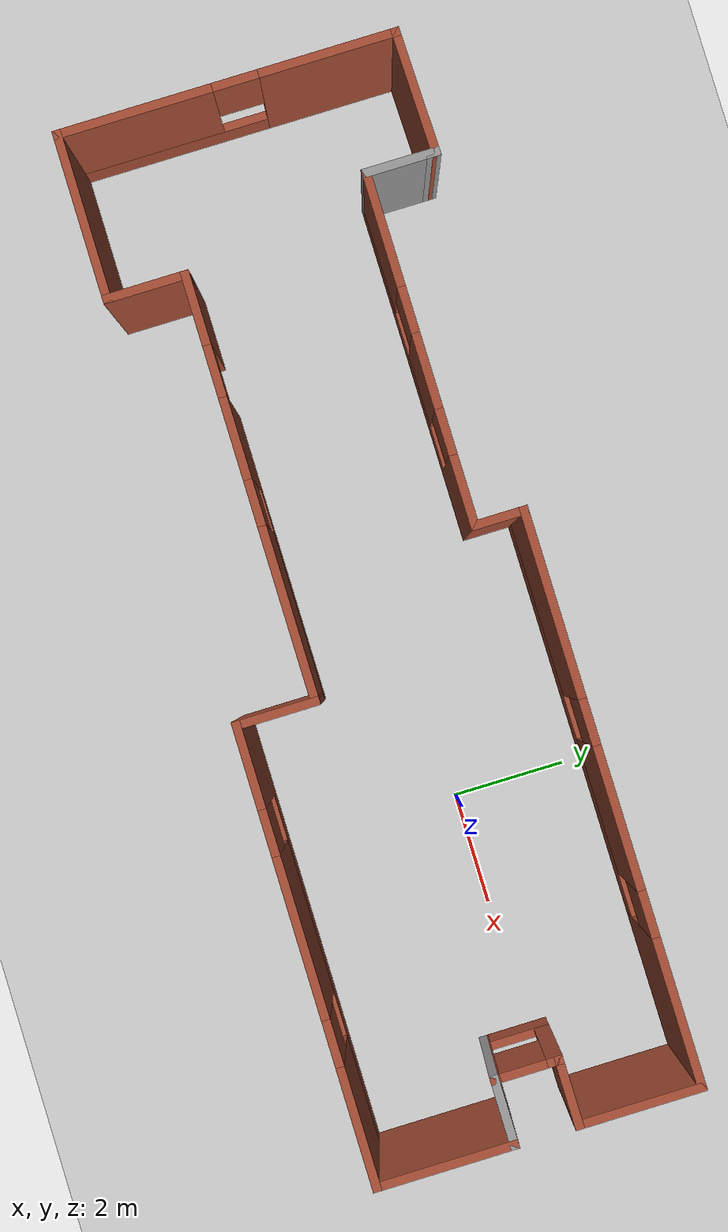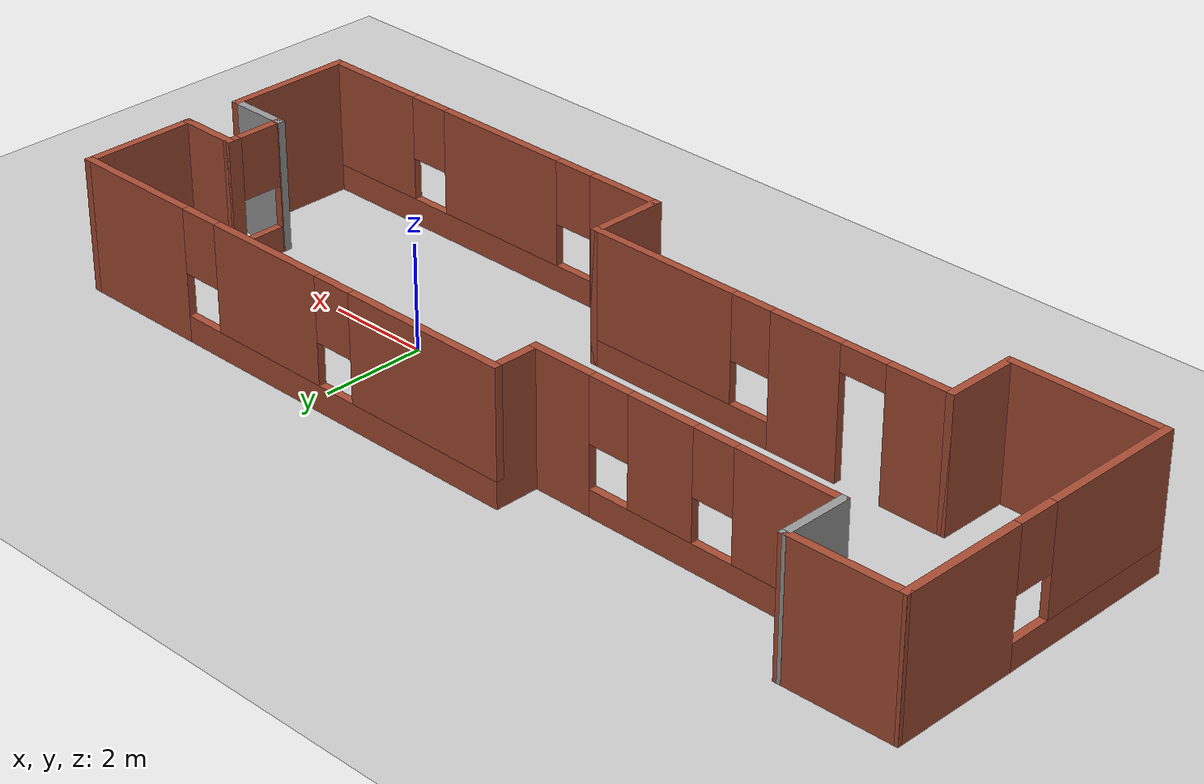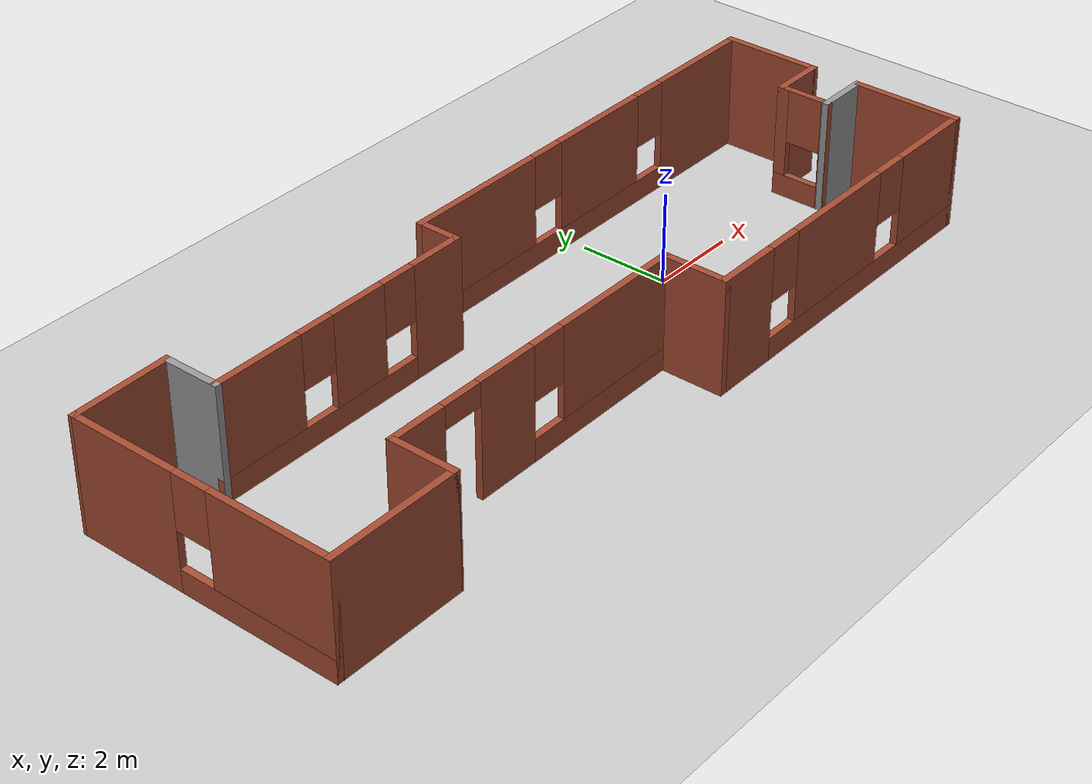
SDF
<sdf version="1.7">
 <world name="default">
  <light name="sun" type="directional">
   <pose>0 0 10 0 -0 0</pose>
   <diffuse>0.8 0.8 0.8 1</diffuse>
   <specular>0.2 0.2 0.2 1</specular>
   <attenuation>
    <range>1000</range>
    <constant>0.9</constant>
    <linear>0.01</linear>
    <quadratic>0.001</quadratic>
   </attenuation>
   <direction>-0.5 0.1 -0.9</direction>
   <spot><inner_angle>0</inner_angle><outer_angle>0</outer_angle><falloff>0</falloff></spot>
  </light>
  <model name="ground_plane">
   <static>1</static>
   <link name="link">
    <collision name="collision">
     <geometry><plane><normal>0 0 1</normal><size>100 100</size></plane></geometry>
     <surface>
      <contact><collide_bitmask>65535</collide_bitmask></contact>
      <friction><ode><mu>100</mu><mu2>50</mu2></ode></friction>
     </surface>
    </collision>
    <visual name="visual">
     <cast_shadows>0</cast_shadows>
     <geometry><plane><normal>0 0 1</normal><size>100 100</size></plane></geometry>
     <material>
      <script><uri>file://media/materials/scripts/gazebo.material</uri><name>Gazebo/Grey</name></script>
     </material>
    </visual>
   </link>
  </model>
  <gravity>0 0 -9.8</gravity>
  <magnetic_field>6e-06 2.3e-05 -4.2e-05</magnetic_field>
  <atmosphere type="adiabatic"/>
  <physics type="ode">
   <max_step_size>0.001</max_step_size>
   <real_time_factor>1</real_time_factor>
   <real_time_update_rate>1000</real_time_update_rate>
  </physics>
  <scene><ambient>0.4 0.4 0.4 1</ambient><background>0.7 0.7 0.7 1</background><shadows>1</shadows></scene>
  <audio><device>default</device></audio>
  <spherical_coordinates>
   <surface_model>EARTH_WGS84</surface_model>
   <latitude_deg>0</latitude_deg>
   <longitude_deg>0</longitude_deg>
   <elevation>0</elevation>
   <heading_deg>0</heading_deg>
  </spherical_coordinates>
  <model name="test_world">
   <pose>-3.57594 0.098255 0 0 -0 0</pose>
   <link name="Wall_0">
    <pose>-9.02412 -0.3225 0 0 -0 -1.5708</pose>
    <visual name="Wall_0_Visual_0">
     <pose>-1.77206 0 1.25 0 -0 0</pose>
     <geometry><box><size>2.45588 0.15 2.5</size></box></geometry>
     <material>
      <script><uri>file://media/materials/scripts/gazebo.material</uri><name>Gazebo/Bricks</name></script>
      <ambient>1 1 1 1</ambient>
     </material>
     <meta><layer>0</layer></meta>
    </visual>
    <collision name="Wall_0_Collision_0">
     <geometry><box><size>2.45588 0.15 2.5</size></box></geometry>
     <pose>-1.77206 0 1.25 0 -0 0</pose>
    </collision>
    <visual name="Wall_0_Visual_1">
     <pose>1.22794 0 0.25 0 -0 0</pose>
     <geometry><box><size>3.54412 0.15 0.5</size></box></geometry>
     <material>
      <script><uri>file://media/materials/scripts/gazebo.material</uri><name>Gazebo/Bricks</name></script>
      <ambient>1 1 1 1</ambient>
     </material>
     <meta><layer>0</layer></meta>
    </visual>
    <collision name="Wall_0_Collision_1">
     <geometry><box><size>3.54412 0.15 0.5</size></box></geometry>
     <pose>1.22794 0 0.25 0 -0 0</pose>
    </collision>
    <visual name="Wall_0_Visual_2">
     <pose>1.62794 0 1.5 0 -0 0</pose>
     <geometry><box><size>2.74412 0.15 2</size></box></geometry>
     <material>
      <script><uri>file://media/materials/scripts/gazebo.material</uri><name>Gazebo/Bricks</name></script>
      <ambient>1 1 1 1</ambient>
     </material>
     <meta><layer>0</layer></meta>
    </visual>
    <collision name="Wall_0_Collision_2">
     <geometry><box><size>2.74412 0.15 2</size></box></geometry>
     <pose>1.62794 0 1.5 0 -0 0</pose>
    </collision>
    <visual name="Wall_0_Visual_3">
     <pose>-0.14412 0 1.9 0 -0 0</pose>
     <geometry><box><size>0.8 0.15 1.2</size></box></geometry>
     <material>
      <script><uri>file://media/materials/scripts/gazebo.material</uri><name>Gazebo/Bricks</name></script>
      <ambient>1 1 1 1</ambient>
     </material>
     <meta><layer>0</layer></meta>
    </visual>
    <collision name="Wall_0_Collision_3">
     <geometry><box><size>0.8 0.15 1.2</size></box></geometry>
     <pose>-0.14412 0 1.9 0 -0 0</pose>
    </collision>
   </link>
   <link name="Wall_1">
    <collision name="Wall_1_Collision">
     <geometry><box><size>3 0.15 2.5</size></box></geometry>
     <pose>0 0 1.25 0 -0 0</pose>
    </collision>
    <visual name="Wall_1_Visual">
     <pose>0 0 1.25 0 -0 0</pose>
     <geometry><box><size>3 0.15 2.5</size></box></geometry>
     <material>
      <script><uri>file://media/materials/scripts/gazebo.material</uri><name>Gazebo/Bricks</name></script>
      <ambient>1 1 1 1</ambient>
     </material>
     <meta><layer>0</layer></meta>
    </visual>
    <pose>-7.59912 -3.2475 0 0 -0 0</pose>
   </link>
   <link name="Wall_10">
    <collision name="Wall_10_Collision">
     <geometry><box><size>2.25 0.15 2.5</size></box></geometry>
     <pose>0 0 1.25 0 -0 0</pose>
    </collision>
    <visual name="Wall_10_Visual">
     <pose>0 0 1.25 0 -0 0</pose>
     <geometry><box><size>2.25 0.15 2.5</size></box></geometry>
     <material>
      <script><uri>file://media/materials/scripts/gazebo.material</uri><name>Gazebo/Bricks</name></script>
      <ambient>1 1 1 1</ambient>
     </material>
     <meta><layer>0</layer></meta>
    </visual>
    <pose>9.02588 1.2525 0 0 -0 1.5708</pose>
   </link>
   <link name="Wall_11">
    <pose>4.10088 2.3025 0 0 -0 3.14159</pose>
    <visual name="Wall_11_Visual_0">
     <pose>-3.69442 0 1.25 0 -0 0</pose>
     <geometry><box><size>2.61115 0.15 2.5</size></box></geometry>
     <material>
      <script><uri>file://media/materials/scripts/gazebo.material</uri><name>Gazebo/Bricks</name></script>
      <ambient>1 1 1 1</ambient>
     </material>
     <meta><layer>0</layer></meta>
    </visual>
    <collision name="Wall_11_Collision_0">
     <geometry><box><size>2.61115 0.15 2.5</size></box></geometry>
     <pose>-3.69442 0 1.25 0 -0 0</pose>
    </collision>
    <visual name="Wall_11_Visual_1">
     <pose>1.30557 0 0.25 0 -0 0</pose>
     <geometry><box><size>7.38885 0.15 0.5</size></box></geometry>
     <material>
      <script><uri>file://media/materials/scripts/gazebo.material</uri><name>Gazebo/Bricks</name></script>
      <ambient>1 1 1 1</ambient>
     </material>
     <meta><layer>0</layer></meta>
    </visual>
    <collision name="Wall_11_Collision_1">
     <geometry><box><size>7.38885 0.15 0.5</size></box></geometry>
     <pose>1.30557 0 0.25 0 -0 0</pose>
    </collision>
    <visual name="Wall_11_Visual_2">
     <pose>-0.349594 0 1.5 0 -0 0</pose>
     <geometry><box><size>2.47851 0.15 2</size></box></geometry>
     <material>
      <script><uri>file://media/materials/scripts/gazebo.material</uri><name>Gazebo/Bricks</name></script>
      <ambient>1 1 1 1</ambient>
     </material>
     <meta><layer>0</layer></meta>
    </visual>
    <collision name="Wall_11_Collision_2">
     <geometry><box><size>2.47851 0.15 2</size></box></geometry>
     <pose>-0.349594 0 1.5 0 -0 0</pose>
    </collision>
    <visual name="Wall_11_Visual_3">
     <pose>3.34483 0 1.5 0 -0 0</pose>
     <geometry><box><size>3.31034 0.15 2</size></box></geometry>
     <material>
      <script><uri>file://media/materials/scripts/gazebo.material</uri><name>Gazebo/Bricks</name></script>
      <ambient>1 1 1 1</ambient>
     </material>
     <meta><layer>0</layer></meta>
    </visual>
    <collision name="Wall_11_Collision_3">
     <geometry><box><size>3.31034 0.15 2</size></box></geometry>
     <pose>3.34483 0 1.5 0 -0 0</pose>
    </collision>
    <visual name="Wall_11_Visual_4">
     <pose>-1.98885 0 1.9 0 -0 0</pose>
     <geometry><box><size>0.8 0.15 1.2</size></box></geometry>
     <material>
      <script><uri>file://media/materials/scripts/gazebo.material</uri><name>Gazebo/Bricks</name></script>
      <ambient>1 1 1 1</ambient>
     </material>
     <meta><layer>0</layer></meta>
    </visual>
    <collision name="Wall_11_Collision_4">
     <geometry><box><size>0.8 0.15 1.2</size></box></geometry>
     <pose>-1.98885 0 1.9 0 -0 0</pose>
    </collision>
    <visual name="Wall_11_Visual_5">
     <pose>1.28966 0 1.9 0 -0 0</pose>
     <geometry><box><size>0.8 0.15 1.2</size></box></geometry>
     <material>
      <script><uri>file://media/materials/scripts/gazebo.material</uri><name>Gazebo/Bricks</name></script>
      <ambient>1 1 1 1</ambient>
     </material>
     <meta><layer>0</layer></meta>
    </visual>
    <collision name="Wall_11_Collision_5">
     <geometry><box><size>0.8 0.15 1.2</size></box></geometry>
     <pose>1.28966 0 1.9 0 -0 0</pose>
    </collision>
   </link>
   <link name="Wall_12">
    <collision name="Wall_12_Collision">
     <geometry><box><size>1 0.15 2.5</size></box></geometry>
     <pose>0 0 1.25 0 -0 0</pose>
    </collision>
    <visual name="Wall_12_Visual">
     <pose>0 0 1.25 0 -0 0</pose>
     <geometry><box><size>1 0.15 2.5</size></box></geometry>
     <material>
      <script><uri>file://media/materials/scripts/gazebo.material</uri><name>Gazebo/Bricks</name></script>
      <ambient>1 1 1 1</ambient>
     </material>
     <meta><layer>0</layer></meta>
    </visual>
    <pose>-0.824118 1.8775 0 0 -0 -1.5708</pose>
   </link>
   <link name="Wall_13">
    <pose>-3.87412 1.4525 0 0 -0 3.14159</pose>
    <visual name="Wall_13_Visual_0">
     <pose>-2.48035 0 1.25 0 -0 0</pose>
     <geometry><box><size>1.2893 0.15 2.5</size></box></geometry>
     <material>
      <script><uri>file://media/materials/scripts/gazebo.material</uri><name>Gazebo/Bricks</name></script>
      <ambient>1 1 1 1</ambient>
     </material>
     <meta><layer>0</layer></meta>
    </visual>
    <collision name="Wall_13_Collision_0">
     <geometry><box><size>1.2893 0.15 2.5</size></box></geometry>
     <pose>-2.48035 0 1.25 0 -0 0</pose>
    </collision>
    <visual name="Wall_13_Visual_1">
     <pose>0.644652 0 0.25 0 -0 0</pose>
     <geometry><box><size>4.9607 0.15 0.5</size></box></geometry>
     <material>
      <script><uri>file://media/materials/scripts/gazebo.material</uri><name>Gazebo/Bricks</name></script>
      <ambient>1 1 1 1</ambient>
     </material>
     <meta><layer>0</layer></meta>
    </visual>
    <collision name="Wall_13_Collision_1">
     <geometry><box><size>4.9607 0.15 0.5</size></box></geometry>
     <pose>0.644652 0 0.25 0 -0 0</pose>
    </collision>
    <visual name="Wall_13_Visual_2">
     <pose>-0.379733 0 1.5 0 -0 0</pose>
     <geometry><box><size>1.31193 0.15 2</size></box></geometry>
     <material>
      <script><uri>file://media/materials/scripts/gazebo.material</uri><name>Gazebo/Bricks</name></script>
      <ambient>1 1 1 1</ambient>
     </material>
     <meta><layer>0</layer></meta>
    </visual>
    <collision name="Wall_13_Collision_2">
     <geometry><box><size>1.31193 0.15 2</size></box></geometry>
     <pose>-0.379733 0 1.5 0 -0 0</pose>
    </collision>
    <visual name="Wall_13_Visual_3">
     <pose>2.10061 0 1.5 0 -0 0</pose>
     <geometry><box><size>2.04877 0.15 2</size></box></geometry>
     <material>
      <script><uri>file://media/materials/scripts/gazebo.material</uri><name>Gazebo/Bricks</name></script>
      <ambient>1 1 1 1</ambient>
     </material>
     <meta><layer>0</layer></meta>
    </visual>
    <collision name="Wall_13_Collision_3">
     <geometry><box><size>2.04877 0.15 2</size></box></geometry>
     <pose>2.10061 0 1.5 0 -0 0</pose>
    </collision>
    <visual name="Wall_13_Visual_4">
     <pose>-1.43569 0 1.9 0 -0 0</pose>
     <geometry><box><size>0.8 0.15 1.2</size></box></geometry>
     <material>
      <script><uri>file://media/materials/scripts/gazebo.material</uri><name>Gazebo/Bricks</name></script>
      <ambient>1 1 1 1</ambient>
     </material>
     <meta><layer>0</layer></meta>
    </visual>
    <collision name="Wall_13_Collision_4">
     <geometry><box><size>0.8 0.15 1.2</size></box></geometry>
     <pose>-1.43569 0 1.9 0 -0 0</pose>
    </collision>
    <visual name="Wall_13_Visual_5">
     <pose>0.676229 0 1.9 0 -0 0</pose>
     <geometry><box><size>0.8 0.15 1.2</size></box></geometry>
     <material>
      <script><uri>file://media/materials/scripts/gazebo.material</uri><name>Gazebo/Bricks</name></script>
      <ambient>1 1 1 1</ambient>
     </material>
     <meta><layer>0</layer></meta>
    </visual>
    <collision name="Wall_13_Collision_5">
     <geometry><box><size>0.8 0.15 1.2</size></box></geometry>
     <pose>0.676229 0 1.9 0 -0 0</pose>
    </collision>
   </link>
   <link name="Wall_14">
    <collision name="Wall_14_Collision">
     <geometry><box><size>1.25 0.15 2.5</size></box></geometry>
     <pose>0 0 1.25 0 -0 0</pose>
    </collision>
    <visual name="Wall_14_Visual">
     <pose>0 0 1.25 0 -0 0</pose>
     <geometry><box><size>1.25 0.15 2.5</size></box></geometry>
     <material>
      <script><uri>file://media/materials/scripts/gazebo.material</uri><name>Gazebo/Grey</name></script>
      <ambient>1 1 1 1</ambient>
     </material>
     <meta><layer>0</layer></meta>
    </visual>
    <pose>-6.92412 2.0025 0 0 -0 1.5708</pose>
   </link>
   <link name="Wall_15">
    <collision name="Wall_15_Collision">
     <geometry><box><size>0.25 0.15 2.5</size></box></geometry>
     <pose>0 0 1.25 0 -0 0</pose>
    </collision>
    <visual name="Wall_15_Visual">
     <pose>0 0 1.25 0 -0 0</pose>
     <geometry><box><size>0.25 0.15 2.5</size></box></geometry>
     <material>
      <script><uri>file://media/materials/scripts/gazebo.material</uri><name>Gazebo/Grey</name></script>
      <ambient>1 1 1 1</ambient>
     </material>
     <meta><layer>0</layer></meta>
    </visual>
    <pose>-6.92412 2.6025 0 0 -0 1.5708</pose>
   </link>
   <link name="Wall_16">
    <collision name="Wall_16_Collision">
     <geometry><box><size>2.2506 0.15 2.5</size></box></geometry>
     <pose>0 0 1.25 0 -0 0</pose>
    </collision>
    <visual name="Wall_16_Visual">
     <pose>0 0 1.25 0 -0 0</pose>
     <geometry><box><size>2.2506 0.15 2.5</size></box></geometry>
     <material>
      <script><uri>file://media/materials/scripts/gazebo.material</uri><name>Gazebo/Bricks</name></script>
      <ambient>1 1 1 1</ambient>
     </material>
     <meta><layer>0</layer></meta>
    </visual>
    <pose>-7.97412 2.6275 0 0 -0 -3.11779</pose>
   </link>
   <link name="Wall_2">
    <collision name="Wall_2_Collision">
     <geometry><box><size>1.5 0.15 2.5</size></box></geometry>
     <pose>0 0 1.25 0 -0 0</pose>
    </collision>
    <visual name="Wall_2_Visual">
     <pose>0 0 1.25 0 -0 0</pose>
     <geometry><box><size>1.5 0.15 2.5</size></box></geometry>
     <material>
      <script><uri>file://media/materials/scripts/gazebo.material</uri><name>Gazebo/Bricks</name></script>
      <ambient>1 1 1 1</ambient>
     </material>
     <meta><layer>0</layer></meta>
    </visual>
    <pose>-6.17412 -2.5725 0 0 -0 1.5708</pose>
   </link>
   <link name="Wall_3">
    <pose>-2.49912 -1.8975 0 0 -0 0</pose>
    <visual name="Wall_3_Visual_0">
     <pose>-3.1055 0 1.25 0 -0 0</pose>
     <geometry><box><size>1.289 0.15 2.5</size></box></geometry>
     <material>
      <script><uri>file://media/materials/scripts/gazebo.material</uri><name>Gazebo/Bricks</name></script>
      <ambient>1 1 1 1</ambient>
     </material>
     <meta><layer>0</layer></meta>
    </visual>
    <collision name="Wall_3_Collision_0">
     <geometry><box><size>1.289 0.15 2.5</size></box></geometry>
     <pose>-3.1055 0 1.25 0 -0 0</pose>
    </collision>
    <visual name="Wall_3_Visual_1">
     <pose>-0.849586 0 1.25 0 -0 0</pose>
     <geometry><box><size>1.42283 0.15 2.5</size></box></geometry>
     <material>
      <script><uri>file://media/materials/scripts/gazebo.material</uri><name>Gazebo/Bricks</name></script>
      <ambient>1 1 1 1</ambient>
     </material>
     <meta><layer>0</layer></meta>
    </visual>
    <collision name="Wall_3_Collision_1">
     <geometry><box><size>1.42283 0.15 2.5</size></box></geometry>
     <pose>-0.849586 0 1.25 0 -0 0</pose>
    </collision>
    <visual name="Wall_3_Visual_2">
     <pose>1.80592 0 0.25 0 -0 0</pose>
     <geometry><box><size>3.88817 0.15 0.5</size></box></geometry>
     <material>
      <script><uri>file://media/materials/scripts/gazebo.material</uri><name>Gazebo/Bricks</name></script>
      <ambient>1 1 1 1</ambient>
     </material>
     <meta><layer>0</layer></meta>
    </visual>
    <collision name="Wall_3_Collision_2">
     <geometry><box><size>3.88817 0.15 0.5</size></box></geometry>
     <pose>1.80592 0 0.25 0 -0 0</pose>
    </collision>
    <visual name="Wall_3_Visual_3">
     <pose>2.20592 0 1.5 0 -0 0</pose>
     <geometry><box><size>3.08817 0.15 2</size></box></geometry>
     <material>
      <script><uri>file://media/materials/scripts/gazebo.material</uri><name>Gazebo/Bricks</name></script>
      <ambient>1 1 1 1</ambient>
     </material>
     <meta><layer>0</layer></meta>
    </visual>
    <collision name="Wall_3_Collision_3">
     <geometry><box><size>3.08817 0.15 2</size></box></geometry>
     <pose>2.20592 0 1.5 0 -0 0</pose>
    </collision>
    <visual name="Wall_3_Visual_4">
     <pose>0.261831 0 1.9 0 -0 0</pose>
     <geometry><box><size>0.8 0.15 1.2</size></box></geometry>
     <material>
      <script><uri>file://media/materials/scripts/gazebo.material</uri><name>Gazebo/Bricks</name></script>
      <ambient>1 1 1 1</ambient>
     </material>
     <meta><layer>0</layer></meta>
    </visual>
    <collision name="Wall_3_Collision_4">
     <geometry><box><size>0.8 0.15 1.2</size></box></geometry>
     <pose>0.261831 0 1.9 0 -0 0</pose>
    </collision>
    <visual name="Wall_3_Visual_5">
     <pose>-2.011 0 2.25 0 -0 0</pose>
     <geometry><box><size>0.9 0.15 0.5</size></box></geometry>
     <material>
      <script><uri>file://media/materials/scripts/gazebo.material</uri><name>Gazebo/Bricks</name></script>
      <ambient>1 1 1 1</ambient>
     </material>
     <meta><layer>0</layer></meta>
    </visual>
    <collision name="Wall_3_Collision_5">
     <geometry><box><size>0.9 0.15 0.5</size></box></geometry>
     <pose>-2.011 0 2.25 0 -0 0</pose>
    </collision>
   </link>
   <link name="Wall_4">
    <collision name="Wall_4_Collision">
     <geometry><box><size>1.5 0.15 2.5</size></box></geometry>
     <pose>0 0 1.25 0 -0 0</pose>
    </collision>
    <visual name="Wall_4_Visual">
     <pose>0 0 1.25 0 -0 0</pose>
     <geometry><box><size>1.5 0.15 2.5</size></box></geometry>
     <material>
      <script><uri>file://media/materials/scripts/gazebo.material</uri><name>Gazebo/Bricks</name></script>
      <ambient>1 1 1 1</ambient>
     </material>
     <meta><layer>0</layer></meta>
    </visual>
    <pose>1.17588 -2.5725 0 0 -0 -1.5708</pose>
   </link>
   <link name="Wall_5">
    <pose>5.10088 -3.2475 0 0 -0 0</pose>
    <visual name="Wall_5_Visual_0">
     <pose>-3.24426 0 1.25 0 -0 0</pose>
     <geometry><box><size>1.51147 0.15 2.5</size></box></geometry>
     <material>
      <script><uri>file://media/materials/scripts/gazebo.material</uri><name>Gazebo/Bricks</name></script>
      <ambient>1 1 1 1</ambient>
     </material>
     <meta><layer>0</layer></meta>
    </visual>
    <collision name="Wall_5_Collision_0">
     <geometry><box><size>1.51147 0.15 2.5</size></box></geometry>
     <pose>-3.24426 0 1.25 0 -0 0</pose>
    </collision>
    <visual name="Wall_5_Visual_1">
     <pose>0.755737 0 0.25 0 -0 0</pose>
     <geometry><box><size>6.48853 0.15 0.5</size></box></geometry>
     <material>
      <script><uri>file://media/materials/scripts/gazebo.material</uri><name>Gazebo/Bricks</name></script>
      <ambient>1 1 1 1</ambient>
     </material>
     <meta><layer>0</layer></meta>
    </visual>
    <collision name="Wall_5_Collision_1">
     <geometry><box><size>6.48853 0.15 0.5</size></box></geometry>
     <pose>0.755737 0 0.25 0 -0 0</pose>
    </collision>
    <visual name="Wall_5_Visual_2">
     <pose>-0.298419 0 1.5 0 -0 0</pose>
     <geometry><box><size>2.78022 0.15 2</size></box></geometry>
     <material>
      <script><uri>file://media/materials/scripts/gazebo.material</uri><name>Gazebo/Bricks</name></script>
      <ambient>1 1 1 1</ambient>
     </material>
     <meta><layer>0</layer></meta>
    </visual>
    <collision name="Wall_5_Collision_2">
     <geometry><box><size>2.78022 0.15 2</size></box></geometry>
     <pose>-0.298419 0 1.5 0 -0 0</pose>
    </collision>
    <visual name="Wall_5_Visual_3">
     <pose>2.94584 0 1.5 0 -0 0</pose>
     <geometry><box><size>2.10831 0.15 2</size></box></geometry>
     <material>
      <script><uri>file://media/materials/scripts/gazebo.material</uri><name>Gazebo/Bricks</name></script>
      <ambient>1 1 1 1</ambient>
     </material>
     <meta><layer>0</layer></meta>
    </visual>
    <collision name="Wall_5_Collision_3">
     <geometry><box><size>2.10831 0.15 2</size></box></geometry>
     <pose>2.94584 0 1.5 0 -0 0</pose>
    </collision>
    <visual name="Wall_5_Visual_4">
     <pose>-2.08853 0 1.9 0 -0 0</pose>
     <geometry><box><size>0.8 0.15 1.2</size></box></geometry>
     <material>
      <script><uri>file://media/materials/scripts/gazebo.material</uri><name>Gazebo/Bricks</name></script>
      <ambient>1 1 1 1</ambient>
     </material>
     <meta><layer>0</layer></meta>
    </visual>
    <collision name="Wall_5_Collision_4">
     <geometry><box><size>0.8 0.15 1.2</size></box></geometry>
     <pose>-2.08853 0 1.9 0 -0 0</pose>
    </collision>
    <visual name="Wall_5_Visual_5">
     <pose>1.49169 0 1.9 0 -0 0</pose>
     <geometry><box><size>0.8 0.15 1.2</size></box></geometry>
     <material>
      <script><uri>file://media/materials/scripts/gazebo.material</uri><name>Gazebo/Bricks</name></script>
      <ambient>1 1 1 1</ambient>
     </material>
     <meta><layer>0</layer></meta>
    </visual>
    <collision name="Wall_5_Collision_5">
     <geometry><box><size>0.8 0.15 1.2</size></box></geometry>
     <pose>1.49169 0 1.9 0 -0 0</pose>
    </collision>
   </link>
   <link name="Wall_6">
    <collision name="Wall_6_Collision">
     <geometry><box><size>2.5 0.15 2.5</size></box></geometry>
     <pose>0 0 1.25 0 -0 0</pose>
    </collision>
    <visual name="Wall_6_Visual">
     <pose>0 0 1.25 0 -0 0</pose>
     <geometry><box><size>2.5 0.15 2.5</size></box></geometry>
     <material>
      <script><uri>file://media/materials/scripts/gazebo.material</uri><name>Gazebo/Bricks</name></script>
      <ambient>1 1 1 1</ambient>
     </material>
     <meta><layer>0</layer></meta>
    </visual>
    <pose>9.02588 -2.0725 0 0 -0 1.5708</pose>
   </link>
   <link name="Wall_7">
    <collision name="Wall_7_Collision">
     <geometry><box><size>1.25 0.15 2.5</size></box></geometry>
     <pose>0 0 1.25 0 -0 0</pose>
    </collision>
    <visual name="Wall_7_Visual">
     <pose>0 0 1.25 0 -0 0</pose>
     <geometry><box><size>1.25 0.15 2.5</size></box></geometry>
     <material>
      <script><uri>file://media/materials/scripts/gazebo.material</uri><name>Gazebo/Grey</name></script>
      <ambient>1 1 1 1</ambient>
     </material>
     <meta><layer>0</layer></meta>
    </visual>
    <pose>8.47588 -0.8975 0 0 -0 3.14159</pose>
   </link>
   <link name="Wall_8">
    <pose>7.92588 -0.3475 0 0 -0 1.5708</pose>
    <visual name="Wall_8_Visual_0">
     <pose>-0.538565 0 1.25 0 -0 0</pose>
     <geometry><box><size>0.17287 0.15 2.5</size></box></geometry>
     <material>
      <script><uri>file://media/materials/scripts/gazebo.material</uri><name>Gazebo/Bricks</name></script>
      <ambient>1 1 1 1</ambient>
     </material>
     <meta><layer>0</layer></meta>
    </visual>
    <collision name="Wall_8_Collision_0">
     <geometry><box><size>0.17287 0.15 2.5</size></box></geometry>
     <pose>-0.538565 0 1.25 0 -0 0</pose>
    </collision>
    <visual name="Wall_8_Visual_1">
     <pose>0.086435 0 0.25 0 -0 0</pose>
     <geometry><box><size>1.07713 0.15 0.5</size></box></geometry>
     <material>
      <script><uri>file://media/materials/scripts/gazebo.material</uri><name>Gazebo/Bricks</name></script>
      <ambient>1 1 1 1</ambient>
     </material>
     <meta><layer>0</layer></meta>
    </visual>
    <collision name="Wall_8_Collision_1">
     <geometry><box><size>1.07713 0.15 0.5</size></box></geometry>
     <pose>0.086435 0 0.25 0 -0 0</pose>
    </collision>
    <visual name="Wall_8_Visual_2">
     <pose>0.486435 0 1.5 0 -0 0</pose>
     <geometry><box><size>0.27713 0.15 2</size></box></geometry>
     <material>
      <script><uri>file://media/materials/scripts/gazebo.material</uri><name>Gazebo/Bricks</name></script>
      <ambient>1 1 1 1</ambient>
     </material>
     <meta><layer>0</layer></meta>
    </visual>
    <collision name="Wall_8_Collision_2">
     <geometry><box><size>0.27713 0.15 2</size></box></geometry>
     <pose>0.486435 0 1.5 0 -0 0</pose>
    </collision>
    <visual name="Wall_8_Visual_3">
     <pose>-0.05213 0 1.9 0 -0 0</pose>
     <geometry><box><size>0.8 0.15 1.2</size></box></geometry>
     <material>
      <script><uri>file://media/materials/scripts/gazebo.material</uri><name>Gazebo/Bricks</name></script>
      <ambient>1 1 1 1</ambient>
     </material>
     <meta><layer>0</layer></meta>
    </visual>
    <collision name="Wall_8_Collision_3">
     <geometry><box><size>0.8 0.15 1.2</size></box></geometry>
     <pose>-0.05213 0 1.9 0 -0 0</pose>
    </collision>
   </link>
   <link name="Wall_9">
    <collision name="Wall_9_Collision">
     <geometry><box><size>1.25 0.15 2.5</size></box></geometry>
     <pose>0 0 1.25 0 -0 0</pose>
    </collision>
    <visual name="Wall_9_Visual">
     <pose>0 0 1.25 0 -0 0</pose>
     <geometry><box><size>1.25 0.15 2.5</size></box></geometry>
     <material>
      <script><uri>file://media/materials/scripts/gazebo.material</uri><name>Gazebo/Bricks</name></script>
      <ambient>1 1 1 1</ambient>
     </material>
     <meta><layer>0</layer></meta>
    </visual>
    <pose>8.47588 0.2025 0 0 -0 0</pose>
   </link>
   <static>1</static>
  </model>
 </world>
</sdf>
